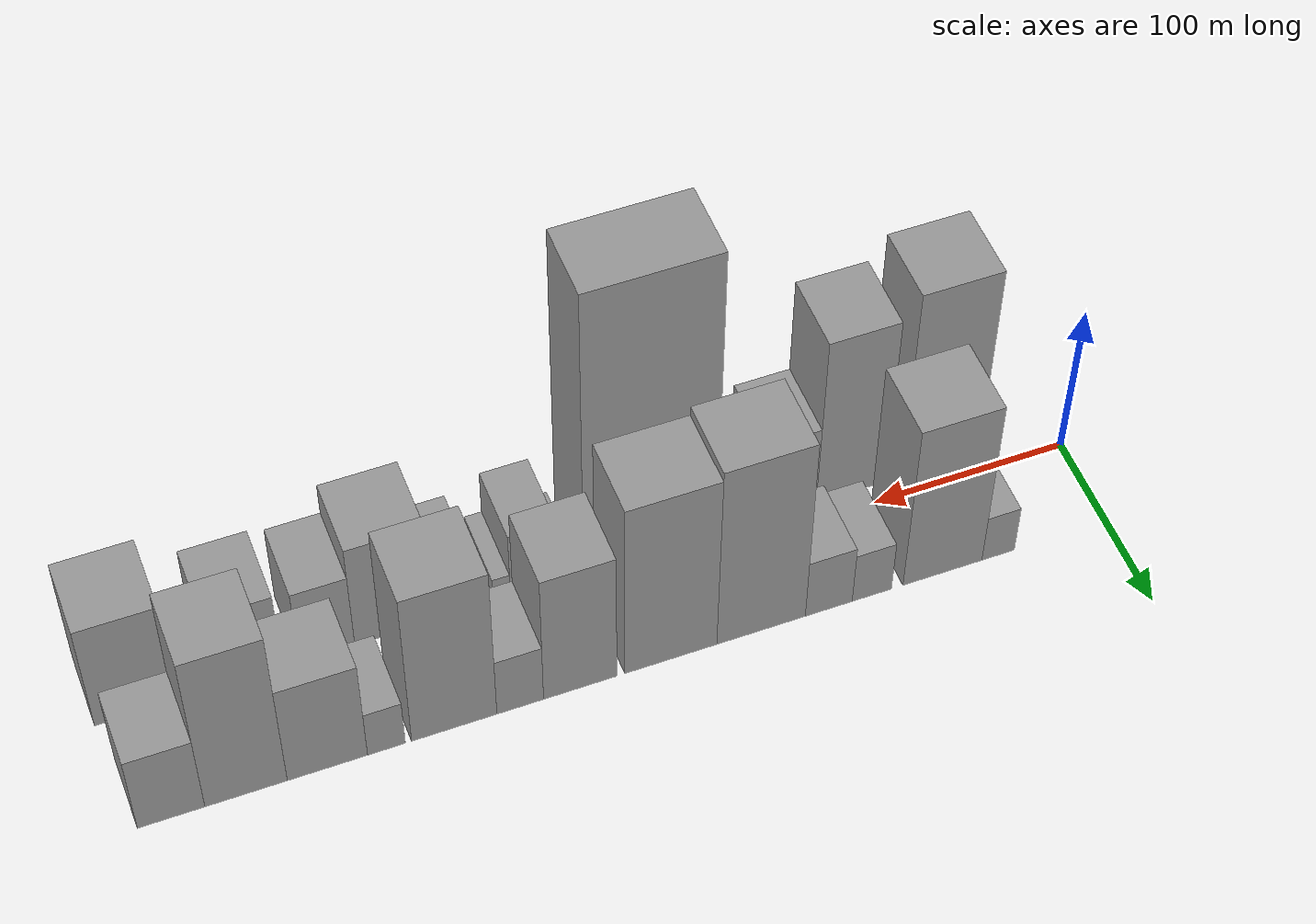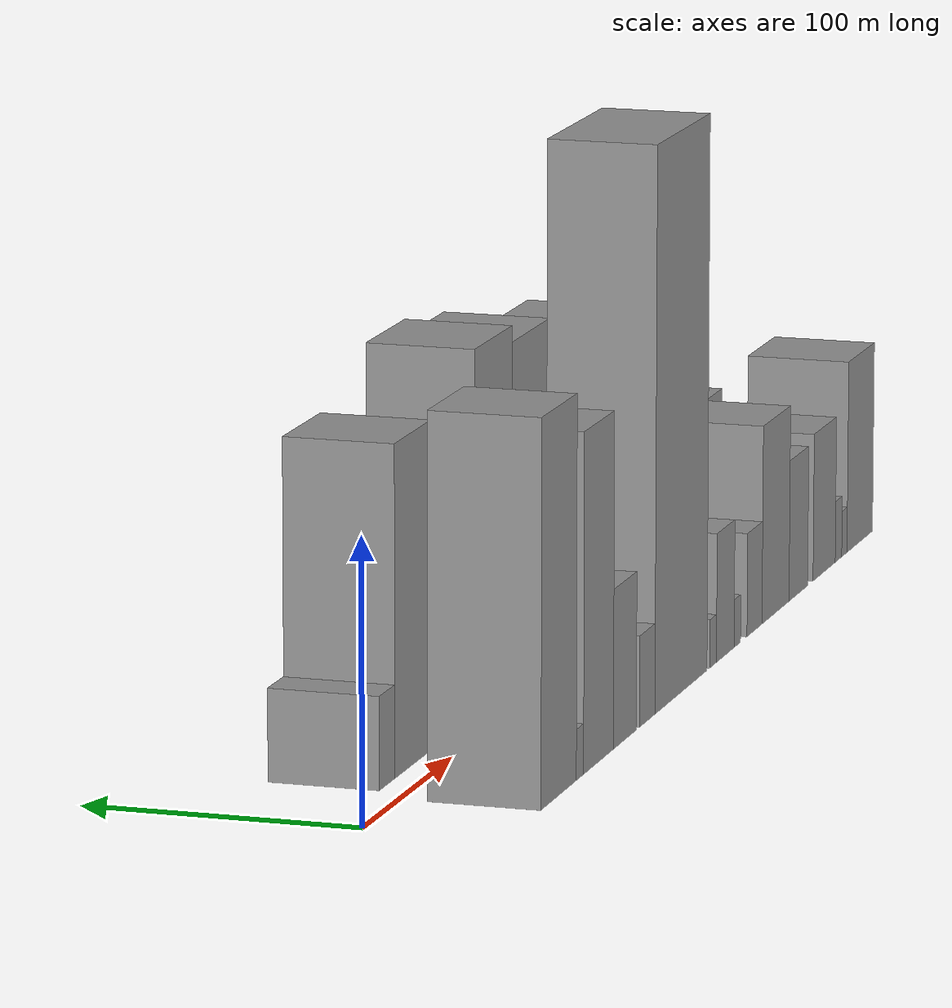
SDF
<sdf version="1.6">
 <world name="default">
  <scene>
   <sky><clouds><speed>12</speed></clouds></sky>
   <ambient>0.4 0.4 0.4 1</ambient>
   <background>0.7 0.7 0.7 1</background>
   <shadows>1</shadows>
  </scene>
  <gravity>0 0 -9.8066</gravity>
  <magnetic_field>6e-06 2.3e-05 -4.2e-05</magnetic_field>
  <physics default="0" name="default_physics" type="ode">
   <ode>
    <solver>
     <type>quick</type>
     <iters>10</iters>
     <sor>1.0</sor>
     <use_dynamic_moi_rescaling>0</use_dynamic_moi_rescaling>
    </solver>
    <constraints>
     <cfm>0</cfm>
     <erp>0.2</erp>
     <contact_max_correcting_vel>100</contact_max_correcting_vel>
     <contact_surface_layer>0.001</contact_surface_layer>
    </constraints>
   </ode>
   <max_step_size>0.004</max_step_size>
   <real_time_factor>1</real_time_factor>
   <real_time_update_rate>250</real_time_update_rate>
  </physics>
  <light name="sun" type="directional">
   <pose>0 0 10 0 0 0</pose>
   <diffuse>0.8 0.8 0.8 1</diffuse>
   <specular>0.2 0.2 0.2 1</specular>
   <attenuation>
    <range>1000</range>
    <constant>0.9</constant>
    <linear>0.01</linear>
    <quadratic>0.001</quadratic>
   </attenuation>
   <direction>-0.5 0.1 -0.9</direction>
  </light>
  <model name="building_1">
   <static>1</static>
   <pose>57.5743 30.0000 0 0.000000 0.000000 1.570796</pose>
   <link name="link">
    <pose>0 0 16.50 0 0 0</pose>
    <collision name="collision"><geometry><box><size>40.0000 17.1486 33.0000</size></box></geometry></collision>
    <visual name="visual">
     <cast_shadows>0</cast_shadows>
     <geometry><box><size>40.0000 17.1486 33.0000</size></box></geometry>
     <material>
      <script>
       <uri>model://grey_wall/materials/scripts</uri>
       <uri>model://grey_wall/materials/textures</uri>
       <name>vrc/grey_wall</name>
      </script>
     </material>
    </visual>
   </link>
  </model>
  <model name="building_2">
   <static>1</static>
   <pose>86.8567 30.0000 0 0.000000 0.000000 1.570796</pose>
   <link name="link">
    <pose>0 0 58.50 0 0 0</pose>
    <collision name="collision"><geometry><box><size>40.0000 41.4161 117.0000</size></box></geometry></collision>
    <visual name="visual">
     <cast_shadows>0</cast_shadows>
     <geometry><box><size>40.0000 41.4161 117.0000</size></box></geometry>
     <material>
      <script>
       <uri>model://grey_wall/materials/scripts</uri>
       <uri>model://grey_wall/materials/textures</uri>
       <name>vrc/grey_wall</name>
      </script>
     </material>
    </visual>
   </link>
  </model>
  <model name="building_3">
   <static>1</static>
   <pose>123.7506 30.0000 0 0.000000 0.000000 1.570796</pose>
   <link name="link">
    <pose>0 0 18.00 0 0 0</pose>
    <collision name="collision"><geometry><box><size>40.0000 20.3717 36.0000</size></box></geometry></collision>
    <visual name="visual">
     <cast_shadows>0</cast_shadows>
     <geometry><box><size>40.0000 20.3717 36.0000</size></box></geometry>
     <material>
      <script>
       <uri>model://grey_wall/materials/scripts</uri>
       <uri>model://grey_wall/materials/textures</uri>
       <name>vrc/grey_wall</name>
      </script>
     </material>
    </visual>
   </link>
  </model>
  <model name="building_4">
   <static>1</static>
   <pose>146.0115 30.0000 0 0.000000 0.000000 1.570796</pose>
   <link name="link">
    <pose>0 0 21.00 0 0 0</pose>
    <collision name="collision"><geometry><box><size>40.0000 24.1501 42.0000</size></box></geometry></collision>
    <visual name="visual">
     <cast_shadows>0</cast_shadows>
     <geometry><box><size>40.0000 24.1501 42.0000</size></box></geometry>
     <material>
      <script>
       <uri>model://grey_wall/materials/scripts</uri>
       <uri>model://grey_wall/materials/textures</uri>
       <name>vrc/grey_wall</name>
      </script>
     </material>
    </visual>
   </link>
  </model>
  <model name="building_5">
   <static>1</static>
   <pose>180.6742 30.0000 0 0.000000 0.000000 1.570796</pose>
   <link name="link">
    <pose>0 0 66.00 0 0 0</pose>
    <collision name="collision"><geometry><box><size>40.0000 45.1751 132.0000</size></box></geometry></collision>
    <visual name="visual">
     <cast_shadows>0</cast_shadows>
     <geometry><box><size>40.0000 45.1751 132.0000</size></box></geometry>
     <material>
      <script>
       <uri>model://grey_wall/materials/scripts</uri>
       <uri>model://grey_wall/materials/textures</uri>
       <name>vrc/grey_wall</name>
      </script>
     </material>
    </visual>
   </link>
  </model>
  <model name="building_6">
   <static>1</static>
   <pose>226.4254 30.0000 0 0.000000 0.000000 1.570796</pose>
   <link name="link">
    <pose>0 0 63.00 0 0 0</pose>
    <collision name="collision"><geometry><box><size>40.0000 46.3274 126.0000</size></box></geometry></collision>
    <visual name="visual">
     <cast_shadows>0</cast_shadows>
     <geometry><box><size>40.0000 46.3274 126.0000</size></box></geometry>
     <material>
      <script>
       <uri>model://grey_wall/materials/scripts</uri>
       <uri>model://grey_wall/materials/textures</uri>
       <name>vrc/grey_wall</name>
      </script>
     </material>
    </visual>
   </link>
  </model>
  <model name="building_7">
   <static>1</static>
   <pose>271.7605 30.0000 0 0.000000 0.000000 1.570796</pose>
   <link name="link">
    <pose>0 0 46.50 0 0 0</pose>
    <collision name="collision"><geometry><box><size>40.0000 36.3428 93.0000</size></box></geometry></collision>
    <visual name="visual">
     <cast_shadows>0</cast_shadows>
     <geometry><box><size>40.0000 36.3428 93.0000</size></box></geometry>
     <material>
      <script>
       <uri>model://grey_wall/materials/scripts</uri>
       <uri>model://grey_wall/materials/textures</uri>
       <name>vrc/grey_wall</name>
      </script>
     </material>
    </visual>
   </link>
  </model>
  <model name="building_8">
   <static>1</static>
   <pose>301.4046 30.0000 0 0.000000 0.000000 1.570796</pose>
   <link name="link">
    <pose>0 0 21.00 0 0 0</pose>
    <collision name="collision"><geometry><box><size>40.0000 22.9454 42.0000</size></box></geometry></collision>
    <visual name="visual">
     <cast_shadows>0</cast_shadows>
     <geometry><box><size>40.0000 22.9454 42.0000</size></box></geometry>
     <material>
      <script>
       <uri>model://grey_wall/materials/scripts</uri>
       <uri>model://grey_wall/materials/textures</uri>
       <name>vrc/grey_wall</name>
      </script>
     </material>
    </visual>
   </link>
  </model>
  <model name="building_9">
   <static>1</static>
   <pose>333.6555 30.0000 0 0.000000 0.000000 1.570796</pose>
   <link name="link">
    <pose>0 0 55.50 0 0 0</pose>
    <collision name="collision"><geometry><box><size>40.0000 41.5563 111.0000</size></box></geometry></collision>
    <visual name="visual">
     <cast_shadows>0</cast_shadows>
     <geometry><box><size>40.0000 41.5563 111.0000</size></box></geometry>
     <material>
      <script>
       <uri>model://grey_wall/materials/scripts</uri>
       <uri>model://grey_wall/materials/textures</uri>
       <name>vrc/grey_wall</name>
      </script>
     </material>
    </visual>
   </link>
  </model>
  <model name="building_10">
   <static>1</static>
   <pose>366.5314 30.0000 0 0.000000 0.000000 1.570796</pose>
   <link name="link">
    <pose>0 0 16.50 0 0 0</pose>
    <collision name="collision"><geometry><box><size>40.0000 18.1955 33.0000</size></box></geometry></collision>
    <visual name="visual">
     <cast_shadows>0</cast_shadows>
     <geometry><box><size>40.0000 18.1955 33.0000</size></box></geometry>
     <material>
      <script>
       <uri>model://grey_wall/materials/scripts</uri>
       <uri>model://grey_wall/materials/textures</uri>
       <name>vrc/grey_wall</name>
      </script>
     </material>
    </visual>
   </link>
  </model>
  <model name="building_11">
   <static>1</static>
   <pose>394.8095 30.0000 0 0.000000 0.000000 1.570796</pose>
   <link name="link">
    <pose>0 0 36.00 0 0 0</pose>
    <collision name="collision"><geometry><box><size>40.0000 38.3607 72.0000</size></box></geometry></collision>
    <visual name="visual">
     <cast_shadows>0</cast_shadows>
     <geometry><box><size>40.0000 38.3607 72.0000</size></box></geometry>
     <material>
      <script>
       <uri>model://grey_wall/materials/scripts</uri>
       <uri>model://grey_wall/materials/textures</uri>
       <name>vrc/grey_wall</name>
      </script>
     </material>
    </visual>
   </link>
  </model>
  <model name="building_12">
   <static>1</static>
   <pose>433.4599 30.0000 0 0.000000 0.000000 1.570796</pose>
   <link name="link">
    <pose>0 0 57.00 0 0 0</pose>
    <collision name="collision"><geometry><box><size>40.0000 38.9402 114.0000</size></box></geometry></collision>
    <visual name="visual">
     <cast_shadows>0</cast_shadows>
     <geometry><box><size>40.0000 38.9402 114.0000</size></box></geometry>
     <material>
      <script>
       <uri>model://grey_wall/materials/scripts</uri>
       <uri>model://grey_wall/materials/textures</uri>
       <name>vrc/grey_wall</name>
      </script>
     </material>
    </visual>
   </link>
  </model>
  <model name="building_13">
   <static>1</static>
   <pose>468.7056 30.0000 0 0.000000 0.000000 1.570796</pose>
   <link name="link">
    <pose>0 0 27.00 0 0 0</pose>
    <collision name="collision"><geometry><box><size>40.0000 31.5512 54.0000</size></box></geometry></collision>
    <visual name="visual">
     <cast_shadows>0</cast_shadows>
     <geometry><box><size>40.0000 31.5512 54.0000</size></box></geometry>
     <material>
      <script>
       <uri>model://grey_wall/materials/scripts</uri>
       <uri>model://grey_wall/materials/textures</uri>
       <name>vrc/grey_wall</name>
      </script>
     </material>
    </visual>
   </link>
  </model>
  <model name="building_14">
   <static>1</static>
   <pose>60.8703 -30.0000 0 0.000000 0.000000 1.570796</pose>
   <link name="link">
    <pose>0 0 67.50 0 0 0</pose>
    <collision name="collision"><geometry><box><size>40.0000 41.7405 135.0000</size></box></geometry></collision>
    <visual name="visual">
     <cast_shadows>0</cast_shadows>
     <geometry><box><size>40.0000 41.7405 135.0000</size></box></geometry>
     <material>
      <script>
       <uri>model://grey_wall/materials/scripts</uri>
       <uri>model://grey_wall/materials/textures</uri>
       <name>vrc/grey_wall</name>
      </script>
     </material>
    </visual>
   </link>
  </model>
  <model name="building_15">
   <static>1</static>
   <pose>86.0809 -30.0000 0 0.000000 0.000000 1.570796</pose>
   <link name="link">
    <pose>0 0 9.00 0 0 0</pose>
    <collision name="collision"><geometry><box><size>40.0000 8.6806 18.0000</size></box></geometry></collision>
    <visual name="visual">
     <cast_shadows>0</cast_shadows>
     <geometry><box><size>40.0000 8.6806 18.0000</size></box></geometry>
     <material>
      <script>
       <uri>model://grey_wall/materials/scripts</uri>
       <uri>model://grey_wall/materials/textures</uri>
       <name>vrc/grey_wall</name>
      </script>
     </material>
    </visual>
   </link>
  </model>
  <model name="building_16">
   <static>1</static>
   <pose>108.7039 -30.0000 0 0.000000 0.000000 1.570796</pose>
   <link name="link">
    <pose>0 0 60.00 0 0 0</pose>
    <collision name="collision"><geometry><box><size>40.0000 36.5654 120.0000</size></box></geometry></collision>
    <visual name="visual">
     <cast_shadows>0</cast_shadows>
     <geometry><box><size>40.0000 36.5654 120.0000</size></box></geometry>
     <material>
      <script>
       <uri>model://grey_wall/materials/scripts</uri>
       <uri>model://grey_wall/materials/textures</uri>
       <name>vrc/grey_wall</name>
      </script>
     </material>
    </visual>
   </link>
  </model>
  <model name="building_17">
   <static>1</static>
   <pose>141.3381 -30.0000 0 0.000000 0.000000 1.570796</pose>
   <link name="link">
    <pose>0 0 28.50 0 0 0</pose>
    <collision name="collision"><geometry><box><size>40.0000 28.7029 57.0000</size></box></geometry></collision>
    <visual name="visual">
     <cast_shadows>0</cast_shadows>
     <geometry><box><size>40.0000 28.7029 57.0000</size></box></geometry>
     <material>
      <script>
       <uri>model://grey_wall/materials/scripts</uri>
       <uri>model://grey_wall/materials/textures</uri>
       <name>vrc/grey_wall</name>
      </script>
     </material>
    </visual>
   </link>
  </model>
  <model name="building_18">
   <static>1</static>
   <pose>169.5216 -30.0000 0 0.000000 0.000000 1.570796</pose>
   <link name="link">
    <pose>0 0 16.50 0 0 0</pose>
    <collision name="collision"><geometry><box><size>40.0000 19.6641 33.0000</size></box></geometry></collision>
    <visual name="visual">
     <cast_shadows>0</cast_shadows>
     <geometry><box><size>40.0000 19.6641 33.0000</size></box></geometry>
     <material>
      <script>
       <uri>model://grey_wall/materials/scripts</uri>
       <uri>model://grey_wall/materials/textures</uri>
       <name>vrc/grey_wall</name>
      </script>
     </material>
    </visual>
   </link>
  </model>
  <model name="building_19">
   <static>1</static>
   <pose>213.5829 -30.0000 0 0.000000 0.000000 1.570796</pose>
   <link name="link">
    <pose>0 0 102.00 0 0 0</pose>
    <collision name="collision"><geometry><box><size>40.0000 68.4586 204.0000</size></box></geometry></collision>
    <visual name="visual">
     <cast_shadows>0</cast_shadows>
     <geometry><box><size>40.0000 68.4586 204.0000</size></box></geometry>
     <material>
      <script>
       <uri>model://grey_wall/materials/scripts</uri>
       <uri>model://grey_wall/materials/textures</uri>
       <name>vrc/grey_wall</name>
      </script>
     </material>
    </visual>
   </link>
  </model>
  <model name="building_20">
   <static>1</static>
   <pose>256.2359 -30.0000 0 0.000000 0.000000 1.570796</pose>
   <link name="link">
    <pose>0 0 9.00 0 0 0</pose>
    <collision name="collision"><geometry><box><size>40.0000 8.8475 18.0000</size></box></geometry></collision>
    <visual name="visual">
     <cast_shadows>0</cast_shadows>
     <geometry><box><size>40.0000 8.8475 18.0000</size></box></geometry>
     <material>
      <script>
       <uri>model://grey_wall/materials/scripts</uri>
       <uri>model://grey_wall/materials/textures</uri>
       <name>vrc/grey_wall</name>
      </script>
     </material>
    </visual>
   </link>
  </model>
  <model name="building_21">
   <static>1</static>
   <pose>272.7714 -30.0000 0 0.000000 0.000000 1.570796</pose>
   <link name="link">
    <pose>0 0 24.00 0 0 0</pose>
    <collision name="collision"><geometry><box><size>40.0000 24.2234 48.0000</size></box></geometry></collision>
    <visual name="visual">
     <cast_shadows>0</cast_shadows>
     <geometry><box><size>40.0000 24.2234 48.0000</size></box></geometry>
     <material>
      <script>
       <uri>model://grey_wall/materials/scripts</uri>
       <uri>model://grey_wall/materials/textures</uri>
       <name>vrc/grey_wall</name>
      </script>
     </material>
    </visual>
   </link>
  </model>
  <model name="building_22">
   <static>1</static>
   <pose>289.2931 -30.0000 0 0.000000 0.000000 1.570796</pose>
   <link name="link">
    <pose>0 0 9.00 0 0 0</pose>
    <collision name="collision"><geometry><box><size>40.0000 8.8200 18.0000</size></box></geometry></collision>
    <visual name="visual">
     <cast_shadows>0</cast_shadows>
     <geometry><box><size>40.0000 8.8200 18.0000</size></box></geometry>
     <material>
      <script>
       <uri>model://grey_wall/materials/scripts</uri>
       <uri>model://grey_wall/materials/textures</uri>
       <name>vrc/grey_wall</name>
      </script>
     </material>
    </visual>
   </link>
  </model>
  <model name="building_23">
   <static>1</static>
   <pose>313.2520 -30.0000 0 0.000000 0.000000 1.570796</pose>
   <link name="link">
    <pose>0 0 19.50 0 0 0</pose>
    <collision name="collision"><geometry><box><size>40.0000 21.0979 39.0000</size></box></geometry></collision>
    <visual name="visual">
     <cast_shadows>0</cast_shadows>
     <geometry><box><size>40.0000 21.0979 39.0000</size></box></geometry>
     <material>
      <script>
       <uri>model://grey_wall/materials/scripts</uri>
       <uri>model://grey_wall/materials/textures</uri>
       <name>vrc/grey_wall</name>
      </script>
     </material>
    </visual>
   </link>
  </model>
  <model name="building_24">
   <static>1</static>
   <pose>343.1685 -30.0000 0 0.000000 0.000000 1.570796</pose>
   <link name="link">
    <pose>0 0 37.50 0 0 0</pose>
    <collision name="collision"><geometry><box><size>40.0000 38.7351 75.0000</size></box></geometry></collision>
    <visual name="visual">
     <cast_shadows>0</cast_shadows>
     <geometry><box><size>40.0000 38.7351 75.0000</size></box></geometry>
     <material>
      <script>
       <uri>model://grey_wall/materials/scripts</uri>
       <uri>model://grey_wall/materials/textures</uri>
       <name>vrc/grey_wall</name>
      </script>
     </material>
    </visual>
   </link>
  </model>
  <model name="building_25">
   <static>1</static>
   <pose>376.1402 -30.0000 0 0.000000 0.000000 1.570796</pose>
   <link name="link">
    <pose>0 0 27.00 0 0 0</pose>
    <collision name="collision"><geometry><box><size>40.0000 27.2083 54.0000</size></box></geometry></collision>
    <visual name="visual">
     <cast_shadows>0</cast_shadows>
     <geometry><box><size>40.0000 27.2083 54.0000</size></box></geometry>
     <material>
      <script>
       <uri>model://grey_wall/materials/scripts</uri>
       <uri>model://grey_wall/materials/textures</uri>
       <name>vrc/grey_wall</name>
      </script>
     </material>
    </visual>
   </link>
  </model>
  <model name="building_26">
   <static>1</static>
   <pose>414.3592 -30.0000 0 0.000000 0.000000 1.570796</pose>
   <link name="link">
    <pose>0 0 28.50 0 0 0</pose>
    <collision name="collision"><geometry><box><size>40.0000 33.2297 57.0000</size></box></geometry></collision>
    <visual name="visual">
     <cast_shadows>0</cast_shadows>
     <geometry><box><size>40.0000 33.2297 57.0000</size></box></geometry>
     <material>
      <script>
       <uri>model://grey_wall/materials/scripts</uri>
       <uri>model://grey_wall/materials/textures</uri>
       <name>vrc/grey_wall</name>
      </script>
     </material>
    </visual>
   </link>
  </model>
  <model name="building_27">
   <static>1</static>
   <pose>435.9061 -30.0000 0 0.000000 0.000000 1.570796</pose>
   <link name="link">
    <pose>0 0 12.00 0 0 0</pose>
    <collision name="collision"><geometry><box><size>40.0000 9.8640 24.0000</size></box></geometry></collision>
    <visual name="visual">
     <cast_shadows>0</cast_shadows>
     <geometry><box><size>40.0000 9.8640 24.0000</size></box></geometry>
     <material>
      <script>
       <uri>model://grey_wall/materials/scripts</uri>
       <uri>model://grey_wall/materials/textures</uri>
       <name>vrc/grey_wall</name>
      </script>
     </material>
    </visual>
   </link>
  </model>
  <model name="building_28">
   <static>1</static>
   <pose>444.8708 -30.0000 0 0.000000 0.000000 1.570796</pose>
   <link name="link">
    <pose>0 0 9.00 0 0 0</pose>
    <collision name="collision"><geometry><box><size>40.0000 8.0654 18.0000</size></box></geometry></collision>
    <visual name="visual">
     <cast_shadows>0</cast_shadows>
     <geometry><box><size>40.0000 8.0654 18.0000</size></box></geometry>
     <material>
      <script>
       <uri>model://grey_wall/materials/scripts</uri>
       <uri>model://grey_wall/materials/textures</uri>
       <name>vrc/grey_wall</name>
      </script>
     </material>
    </visual>
   </link>
  </model>
  <model name="building_29">
   <static>1</static>
   <pose>468.6943 -30.0000 0 0.000000 0.000000 1.570796</pose>
   <link name="link">
    <pose>0 0 37.50 0 0 0</pose>
    <collision name="collision"><geometry><box><size>40.0000 39.5816 75.0000</size></box></geometry></collision>
    <visual name="visual">
     <cast_shadows>0</cast_shadows>
     <geometry><box><size>40.0000 39.5816 75.0000</size></box></geometry>
     <material>
      <script>
       <uri>model://grey_wall/materials/scripts</uri>
       <uri>model://grey_wall/materials/textures</uri>
       <name>vrc/grey_wall</name>
      </script>
     </material>
    </visual>
   </link>
  </model>
 </world>
</sdf>
